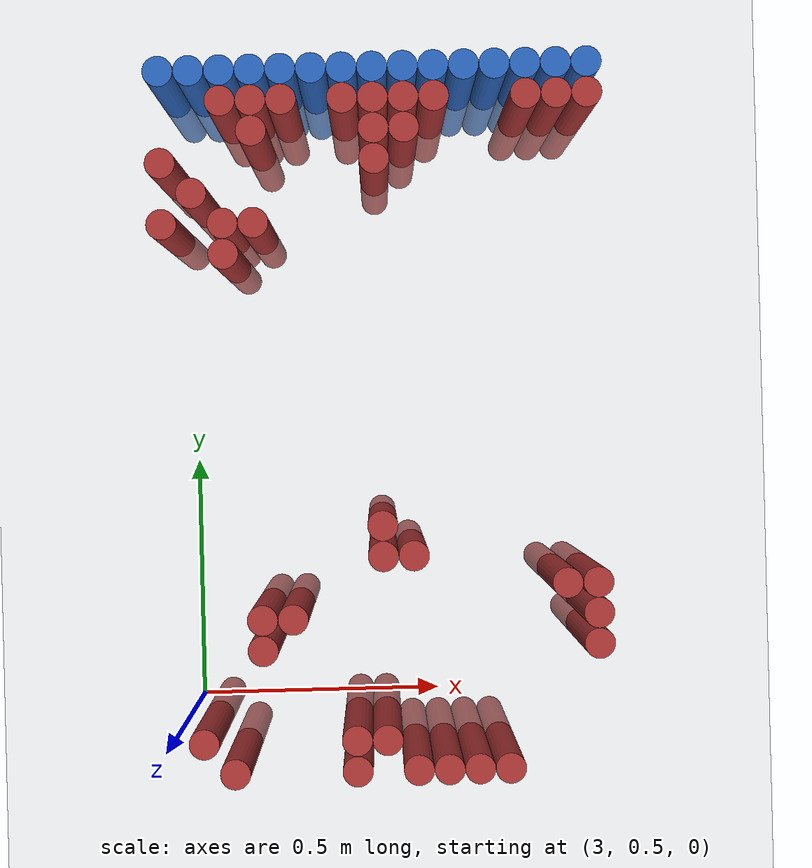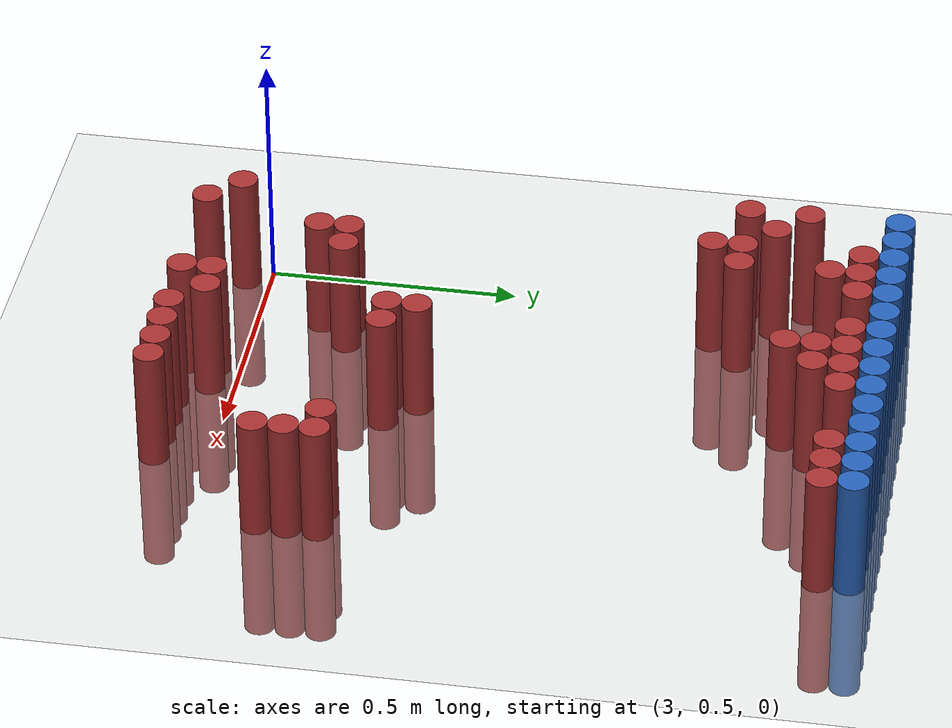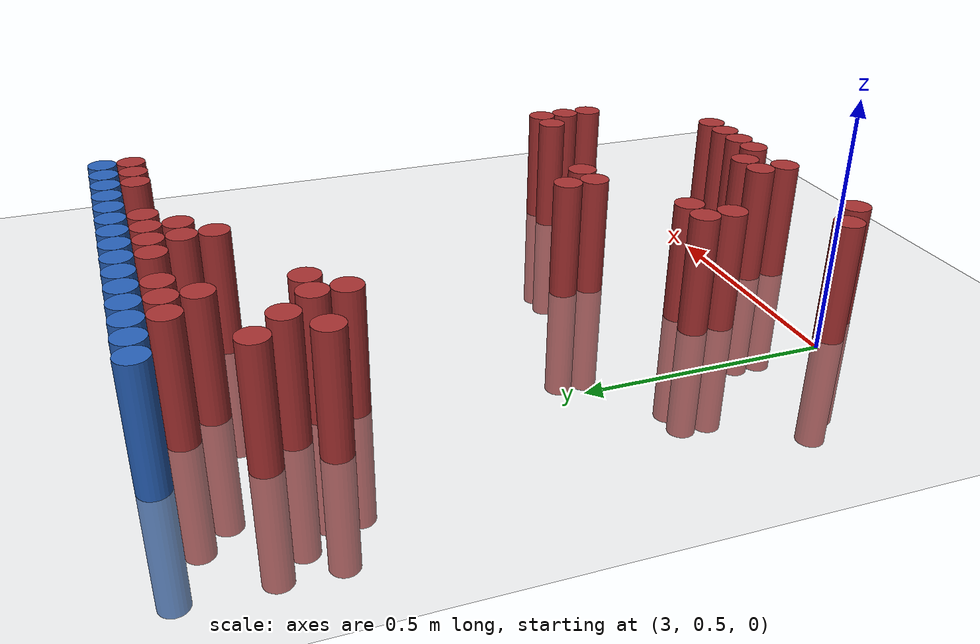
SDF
<sdf version="1.6">
 <world name="default">
  <model name="ground_plane">
   <static>1</static>
   <link name="link">
    <collision name="collision">
     <geometry><plane><normal>0 0 1</normal><size>100 100</size></plane></geometry>
     <surface><friction><ode><mu>100</mu><mu2>50</mu2></ode></friction></surface>
    </collision>
    <visual name="visual">
     <cast_shadows>0</cast_shadows>
     <geometry><plane><normal>0 0 1</normal><size>100 100</size></plane></geometry>
     <material>
      <script><uri>file://media/materials/scripts/gazebo.material</uri><name>Gazebo/Grey</name></script>
     </material>
    </visual>
   </link>
  </model>
  <model name="unit_cylinder_110">
   <static>1</static>
   <pose>2.970000 1.770000 0.000000 0.000000 0.000000 0.000000</pose>
   <link name="link">
    <inertial>
     <mass>1</mass>
     <inertia><ixx>0.145833</ixx><ixy>0</ixy><ixz>0</ixz><iyy>0.145833</iyy><iyz>0</iyz><izz>0.125</izz></inertia>
    </inertial>
    <collision name="collision">
     <geometry><cylinder><radius>0.030000</radius><length>0.5</length></cylinder></geometry>
    </collision>
    <visual name="visual">
     <geometry><cylinder><radius>0.030000</radius><length>0.5</length></cylinder></geometry>
     <material>
      <ambient>0.152000 0.379000 0.720000 1</ambient>
      <diffuse>0.152000 0.379000 0.720000 1</diffuse>
     </material>
     <material>
      <script><name>Gazebo/Grey</name><uri>file://media/materials/scripts/gazebo.material</uri></script>
     </material>
    </visual>
   </link>
  </model>
  <model name="unit_cylinder_111">
   <static>1</static>
   <pose>3.030000 1.770000 0.000000 0.000000 0.000000 0.000000</pose>
   <link name="link">
    <inertial>
     <mass>1</mass>
     <inertia><ixx>0.145833</ixx><ixy>0</ixy><ixz>0</ixz><iyy>0.145833</iyy><iyz>0</iyz><izz>0.125</izz></inertia>
    </inertial>
    <collision name="collision">
     <geometry><cylinder><radius>0.030000</radius><length>0.5</length></cylinder></geometry>
    </collision>
    <visual name="visual">
     <geometry><cylinder><radius>0.030000</radius><length>0.5</length></cylinder></geometry>
     <material>
      <ambient>0.152000 0.379000 0.720000 1</ambient>
      <diffuse>0.152000 0.379000 0.720000 1</diffuse>
     </material>
     <material>
      <script><name>Gazebo/Grey</name><uri>file://media/materials/scripts/gazebo.material</uri></script>
     </material>
    </visual>
   </link>
  </model>
  <model name="unit_cylinder_112">
   <static>1</static>
   <pose>3.090000 1.770000 0.000000 0.000000 0.000000 0.000000</pose>
   <link name="link">
    <inertial>
     <mass>1</mass>
     <inertia><ixx>0.145833</ixx><ixy>0</ixy><ixz>0</ixz><iyy>0.145833</iyy><iyz>0</iyz><izz>0.125</izz></inertia>
    </inertial>
    <collision name="collision">
     <geometry><cylinder><radius>0.030000</radius><length>0.5</length></cylinder></geometry>
    </collision>
    <visual name="visual">
     <geometry><cylinder><radius>0.030000</radius><length>0.5</length></cylinder></geometry>
     <material>
      <ambient>0.152000 0.379000 0.720000 1</ambient>
      <diffuse>0.152000 0.379000 0.720000 1</diffuse>
     </material>
     <material>
      <script><name>Gazebo/Grey</name><uri>file://media/materials/scripts/gazebo.material</uri></script>
     </material>
    </visual>
   </link>
  </model>
  <model name="unit_cylinder_113">
   <static>1</static>
   <pose>3.150000 1.770000 0.000000 0.000000 0.000000 0.000000</pose>
   <link name="link">
    <inertial>
     <mass>1</mass>
     <inertia><ixx>0.145833</ixx><ixy>0</ixy><ixz>0</ixz><iyy>0.145833</iyy><iyz>0</iyz><izz>0.125</izz></inertia>
    </inertial>
    <collision name="collision">
     <geometry><cylinder><radius>0.030000</radius><length>0.5</length></cylinder></geometry>
    </collision>
    <visual name="visual">
     <geometry><cylinder><radius>0.030000</radius><length>0.5</length></cylinder></geometry>
     <material>
      <ambient>0.152000 0.379000 0.720000 1</ambient>
      <diffuse>0.152000 0.379000 0.720000 1</diffuse>
     </material>
     <material>
      <script><name>Gazebo/Grey</name><uri>file://media/materials/scripts/gazebo.material</uri></script>
     </material>
    </visual>
   </link>
  </model>
  <model name="unit_cylinder_114">
   <static>1</static>
   <pose>3.210000 1.770000 0.000000 0.000000 0.000000 0.000000</pose>
   <link name="link">
    <inertial>
     <mass>1</mass>
     <inertia><ixx>0.145833</ixx><ixy>0</ixy><ixz>0</ixz><iyy>0.145833</iyy><iyz>0</iyz><izz>0.125</izz></inertia>
    </inertial>
    <collision name="collision">
     <geometry><cylinder><radius>0.030000</radius><length>0.5</length></cylinder></geometry>
    </collision>
    <visual name="visual">
     <geometry><cylinder><radius>0.030000</radius><length>0.5</length></cylinder></geometry>
     <material>
      <ambient>0.152000 0.379000 0.720000 1</ambient>
      <diffuse>0.152000 0.379000 0.720000 1</diffuse>
     </material>
     <material>
      <script><name>Gazebo/Grey</name><uri>file://media/materials/scripts/gazebo.material</uri></script>
     </material>
    </visual>
   </link>
  </model>
  <model name="unit_cylinder_115">
   <static>1</static>
   <pose>3.270000 1.770000 0.000000 0.000000 0.000000 0.000000</pose>
   <link name="link">
    <inertial>
     <mass>1</mass>
     <inertia><ixx>0.145833</ixx><ixy>0</ixy><ixz>0</ixz><iyy>0.145833</iyy><iyz>0</iyz><izz>0.125</izz></inertia>
    </inertial>
    <collision name="collision">
     <geometry><cylinder><radius>0.030000</radius><length>0.5</length></cylinder></geometry>
    </collision>
    <visual name="visual">
     <geometry><cylinder><radius>0.030000</radius><length>0.5</length></cylinder></geometry>
     <material>
      <ambient>0.152000 0.379000 0.720000 1</ambient>
      <diffuse>0.152000 0.379000 0.720000 1</diffuse>
     </material>
     <material>
      <script><name>Gazebo/Grey</name><uri>file://media/materials/scripts/gazebo.material</uri></script>
     </material>
    </visual>
   </link>
  </model>
  <model name="unit_cylinder_116">
   <static>1</static>
   <pose>3.330000 1.770000 0.000000 0.000000 0.000000 0.000000</pose>
   <link name="link">
    <inertial>
     <mass>1</mass>
     <inertia><ixx>0.145833</ixx><ixy>0</ixy><ixz>0</ixz><iyy>0.145833</iyy><iyz>0</iyz><izz>0.125</izz></inertia>
    </inertial>
    <collision name="collision">
     <geometry><cylinder><radius>0.030000</radius><length>0.5</length></cylinder></geometry>
    </collision>
    <visual name="visual">
     <geometry><cylinder><radius>0.030000</radius><length>0.5</length></cylinder></geometry>
     <material>
      <ambient>0.152000 0.379000 0.720000 1</ambient>
      <diffuse>0.152000 0.379000 0.720000 1</diffuse>
     </material>
     <material>
      <script><name>Gazebo/Grey</name><uri>file://media/materials/scripts/gazebo.material</uri></script>
     </material>
    </visual>
   </link>
  </model>
  <model name="unit_cylinder_117">
   <static>1</static>
   <pose>3.390000 1.770000 0.000000 0.000000 0.000000 0.000000</pose>
   <link name="link">
    <inertial>
     <mass>1</mass>
     <inertia><ixx>0.145833</ixx><ixy>0</ixy><ixz>0</ixz><iyy>0.145833</iyy><iyz>0</iyz><izz>0.125</izz></inertia>
    </inertial>
    <collision name="collision">
     <geometry><cylinder><radius>0.030000</radius><length>0.5</length></cylinder></geometry>
    </collision>
    <visual name="visual">
     <geometry><cylinder><radius>0.030000</radius><length>0.5</length></cylinder></geometry>
     <material>
      <ambient>0.152000 0.379000 0.720000 1</ambient>
      <diffuse>0.152000 0.379000 0.720000 1</diffuse>
     </material>
     <material>
      <script><name>Gazebo/Grey</name><uri>file://media/materials/scripts/gazebo.material</uri></script>
     </material>
    </visual>
   </link>
  </model>
  <model name="unit_cylinder_118">
   <static>1</static>
   <pose>3.450000 1.770000 0.000000 0.000000 0.000000 0.000000</pose>
   <link name="link">
    <inertial>
     <mass>1</mass>
     <inertia><ixx>0.145833</ixx><ixy>0</ixy><ixz>0</ixz><iyy>0.145833</iyy><iyz>0</iyz><izz>0.125</izz></inertia>
    </inertial>
    <collision name="collision">
     <geometry><cylinder><radius>0.030000</radius><length>0.5</length></cylinder></geometry>
    </collision>
    <visual name="visual">
     <geometry><cylinder><radius>0.030000</radius><length>0.5</length></cylinder></geometry>
     <material>
      <ambient>0.152000 0.379000 0.720000 1</ambient>
      <diffuse>0.152000 0.379000 0.720000 1</diffuse>
     </material>
     <material>
      <script><name>Gazebo/Grey</name><uri>file://media/materials/scripts/gazebo.material</uri></script>
     </material>
    </visual>
   </link>
  </model>
  <model name="unit_cylinder_119">
   <static>1</static>
   <pose>3.510000 1.770000 0.000000 0.000000 0.000000 0.000000</pose>
   <link name="link">
    <inertial>
     <mass>1</mass>
     <inertia><ixx>0.145833</ixx><ixy>0</ixy><ixz>0</ixz><iyy>0.145833</iyy><iyz>0</iyz><izz>0.125</izz></inertia>
    </inertial>
    <collision name="collision">
     <geometry><cylinder><radius>0.030000</radius><length>0.5</length></cylinder></geometry>
    </collision>
    <visual name="visual">
     <geometry><cylinder><radius>0.030000</radius><length>0.5</length></cylinder></geometry>
     <material>
      <ambient>0.152000 0.379000 0.720000 1</ambient>
      <diffuse>0.152000 0.379000 0.720000 1</diffuse>
     </material>
     <material>
      <script><name>Gazebo/Grey</name><uri>file://media/materials/scripts/gazebo.material</uri></script>
     </material>
    </visual>
   </link>
  </model>
  <model name="unit_cylinder_120">
   <static>1</static>
   <pose>3.570000 1.770000 0.000000 0.000000 0.000000 0.000000</pose>
   <link name="link">
    <inertial>
     <mass>1</mass>
     <inertia><ixx>0.145833</ixx><ixy>0</ixy><ixz>0</ixz><iyy>0.145833</iyy><iyz>0</iyz><izz>0.125</izz></inertia>
    </inertial>
    <collision name="collision">
     <geometry><cylinder><radius>0.030000</radius><length>0.5</length></cylinder></geometry>
    </collision>
    <visual name="visual">
     <geometry><cylinder><radius>0.030000</radius><length>0.5</length></cylinder></geometry>
     <material>
      <ambient>0.152000 0.379000 0.720000 1</ambient>
      <diffuse>0.152000 0.379000 0.720000 1</diffuse>
     </material>
     <material>
      <script><name>Gazebo/Grey</name><uri>file://media/materials/scripts/gazebo.material</uri></script>
     </material>
    </visual>
   </link>
  </model>
  <model name="unit_cylinder_121">
   <static>1</static>
   <pose>3.630000 1.770000 0.000000 0.000000 0.000000 0.000000</pose>
   <link name="link">
    <inertial>
     <mass>1</mass>
     <inertia><ixx>0.145833</ixx><ixy>0</ixy><ixz>0</ixz><iyy>0.145833</iyy><iyz>0</iyz><izz>0.125</izz></inertia>
    </inertial>
    <collision name="collision">
     <geometry><cylinder><radius>0.030000</radius><length>0.5</length></cylinder></geometry>
    </collision>
    <visual name="visual">
     <geometry><cylinder><radius>0.030000</radius><length>0.5</length></cylinder></geometry>
     <material>
      <ambient>0.152000 0.379000 0.720000 1</ambient>
      <diffuse>0.152000 0.379000 0.720000 1</diffuse>
     </material>
     <material>
      <script><name>Gazebo/Grey</name><uri>file://media/materials/scripts/gazebo.material</uri></script>
     </material>
    </visual>
   </link>
  </model>
  <model name="unit_cylinder_122">
   <static>1</static>
   <pose>3.690000 1.770000 0.000000 0.000000 0.000000 0.000000</pose>
   <link name="link">
    <inertial>
     <mass>1</mass>
     <inertia><ixx>0.145833</ixx><ixy>0</ixy><ixz>0</ixz><iyy>0.145833</iyy><iyz>0</iyz><izz>0.125</izz></inertia>
    </inertial>
    <collision name="collision">
     <geometry><cylinder><radius>0.030000</radius><length>0.5</length></cylinder></geometry>
    </collision>
    <visual name="visual">
     <geometry><cylinder><radius>0.030000</radius><length>0.5</length></cylinder></geometry>
     <material>
      <ambient>0.152000 0.379000 0.720000 1</ambient>
      <diffuse>0.152000 0.379000 0.720000 1</diffuse>
     </material>
     <material>
      <script><name>Gazebo/Grey</name><uri>file://media/materials/scripts/gazebo.material</uri></script>
     </material>
    </visual>
   </link>
  </model>
  <model name="unit_cylinder_123">
   <static>1</static>
   <pose>3.750000 1.770000 0.000000 0.000000 0.000000 0.000000</pose>
   <link name="link">
    <inertial>
     <mass>1</mass>
     <inertia><ixx>0.145833</ixx><ixy>0</ixy><ixz>0</ixz><iyy>0.145833</iyy><iyz>0</iyz><izz>0.125</izz></inertia>
    </inertial>
    <collision name="collision">
     <geometry><cylinder><radius>0.030000</radius><length>0.5</length></cylinder></geometry>
    </collision>
    <visual name="visual">
     <geometry><cylinder><radius>0.030000</radius><length>0.5</length></cylinder></geometry>
     <material>
      <ambient>0.152000 0.379000 0.720000 1</ambient>
      <diffuse>0.152000 0.379000 0.720000 1</diffuse>
     </material>
     <material>
      <script><name>Gazebo/Grey</name><uri>file://media/materials/scripts/gazebo.material</uri></script>
     </material>
    </visual>
   </link>
  </model>
  <model name="unit_cylinder_124">
   <static>1</static>
   <pose>3.810000 1.770000 0.000000 0.000000 0.000000 0.000000</pose>
   <link name="link">
    <inertial>
     <mass>1</mass>
     <inertia><ixx>0.145833</ixx><ixy>0</ixy><ixz>0</ixz><iyy>0.145833</iyy><iyz>0</iyz><izz>0.125</izz></inertia>
    </inertial>
    <collision name="collision">
     <geometry><cylinder><radius>0.030000</radius><length>0.5</length></cylinder></geometry>
    </collision>
    <visual name="visual">
     <geometry><cylinder><radius>0.030000</radius><length>0.5</length></cylinder></geometry>
     <material>
      <ambient>0.152000 0.379000 0.720000 1</ambient>
      <diffuse>0.152000 0.379000 0.720000 1</diffuse>
     </material>
     <material>
      <script><name>Gazebo/Grey</name><uri>file://media/materials/scripts/gazebo.material</uri></script>
     </material>
    </visual>
   </link>
  </model>
  <model name="unit_cylinder_135">
   <static>1</static>
   <pose>3.090000 1.710000 0.000000 0.000000 0.000000 0.000000</pose>
   <link name="link">
    <inertial>
     <mass>1</mass>
     <inertia><ixx>0.145833</ixx><ixy>0</ixy><ixz>0</ixz><iyy>0.145833</iyy><iyz>0</iyz><izz>0.125</izz></inertia>
    </inertial>
    <collision name="collision">
     <geometry><cylinder><radius>0.030000</radius><length>0.5</length></cylinder></geometry>
    </collision>
    <visual name="visual">
     <geometry><cylinder><radius>0.030000</radius><length>0.5</length></cylinder></geometry>
     <material>
      <ambient>0.648000 0.192000 0.192000 1</ambient>
      <diffuse>0.648000 0.192000 0.192000 1</diffuse>
     </material>
     <material>
      <script><name>Gazebo/Grey</name><uri>file://media/materials/scripts/gazebo.material</uri></script>
     </material>
    </visual>
   </link>
  </model>
  <model name="unit_cylinder_136">
   <static>1</static>
   <pose>3.150000 1.710000 0.000000 0.000000 0.000000 0.000000</pose>
   <link name="link">
    <inertial>
     <mass>1</mass>
     <inertia><ixx>0.145833</ixx><ixy>0</ixy><ixz>0</ixz><iyy>0.145833</iyy><iyz>0</iyz><izz>0.125</izz></inertia>
    </inertial>
    <collision name="collision">
     <geometry><cylinder><radius>0.030000</radius><length>0.5</length></cylinder></geometry>
    </collision>
    <visual name="visual">
     <geometry><cylinder><radius>0.030000</radius><length>0.5</length></cylinder></geometry>
     <material>
      <ambient>0.648000 0.192000 0.192000 1</ambient>
      <diffuse>0.648000 0.192000 0.192000 1</diffuse>
     </material>
     <material>
      <script><name>Gazebo/Grey</name><uri>file://media/materials/scripts/gazebo.material</uri></script>
     </material>
    </visual>
   </link>
  </model>
  <model name="unit_cylinder_137">
   <static>1</static>
   <pose>3.210000 1.710000 0.000000 0.000000 0.000000 0.000000</pose>
   <link name="link">
    <inertial>
     <mass>1</mass>
     <inertia><ixx>0.145833</ixx><ixy>0</ixy><ixz>0</ixz><iyy>0.145833</iyy><iyz>0</iyz><izz>0.125</izz></inertia>
    </inertial>
    <collision name="collision">
     <geometry><cylinder><radius>0.030000</radius><length>0.5</length></cylinder></geometry>
    </collision>
    <visual name="visual">
     <geometry><cylinder><radius>0.030000</radius><length>0.5</length></cylinder></geometry>
     <material>
      <ambient>0.648000 0.192000 0.192000 1</ambient>
      <diffuse>0.648000 0.192000 0.192000 1</diffuse>
     </material>
     <material>
      <script><name>Gazebo/Grey</name><uri>file://media/materials/scripts/gazebo.material</uri></script>
     </material>
    </visual>
   </link>
  </model>
  <model name="unit_cylinder_138">
   <static>1</static>
   <pose>3.330000 1.710000 0.000000 0.000000 0.000000 0.000000</pose>
   <link name="link">
    <inertial>
     <mass>1</mass>
     <inertia><ixx>0.145833</ixx><ixy>0</ixy><ixz>0</ixz><iyy>0.145833</iyy><iyz>0</iyz><izz>0.125</izz></inertia>
    </inertial>
    <collision name="collision">
     <geometry><cylinder><radius>0.030000</radius><length>0.5</length></cylinder></geometry>
    </collision>
    <visual name="visual">
     <geometry><cylinder><radius>0.030000</radius><length>0.5</length></cylinder></geometry>
     <material>
      <ambient>0.648000 0.192000 0.192000 1</ambient>
      <diffuse>0.648000 0.192000 0.192000 1</diffuse>
     </material>
     <material>
      <script><name>Gazebo/Grey</name><uri>file://media/materials/scripts/gazebo.material</uri></script>
     </material>
    </visual>
   </link>
  </model>
  <model name="unit_cylinder_139">
   <static>1</static>
   <pose>3.390000 1.710000 0.000000 0.000000 0.000000 0.000000</pose>
   <link name="link">
    <inertial>
     <mass>1</mass>
     <inertia><ixx>0.145833</ixx><ixy>0</ixy><ixz>0</ixz><iyy>0.145833</iyy><iyz>0</iyz><izz>0.125</izz></inertia>
    </inertial>
    <collision name="collision">
     <geometry><cylinder><radius>0.030000</radius><length>0.5</length></cylinder></geometry>
    </collision>
    <visual name="visual">
     <geometry><cylinder><radius>0.030000</radius><length>0.5</length></cylinder></geometry>
     <material>
      <ambient>0.648000 0.192000 0.192000 1</ambient>
      <diffuse>0.648000 0.192000 0.192000 1</diffuse>
     </material>
     <material>
      <script><name>Gazebo/Grey</name><uri>file://media/materials/scripts/gazebo.material</uri></script>
     </material>
    </visual>
   </link>
  </model>
  <model name="unit_cylinder_140">
   <static>1</static>
   <pose>3.450000 1.710000 0.000000 0.000000 0.000000 0.000000</pose>
   <link name="link">
    <inertial>
     <mass>1</mass>
     <inertia><ixx>0.145833</ixx><ixy>0</ixy><ixz>0</ixz><iyy>0.145833</iyy><iyz>0</iyz><izz>0.125</izz></inertia>
    </inertial>
    <collision name="collision">
     <geometry><cylinder><radius>0.030000</radius><length>0.5</length></cylinder></geometry>
    </collision>
    <visual name="visual">
     <geometry><cylinder><radius>0.030000</radius><length>0.5</length></cylinder></geometry>
     <material>
      <ambient>0.648000 0.192000 0.192000 1</ambient>
      <diffuse>0.648000 0.192000 0.192000 1</diffuse>
     </material>
     <material>
      <script><name>Gazebo/Grey</name><uri>file://media/materials/scripts/gazebo.material</uri></script>
     </material>
    </visual>
   </link>
  </model>
  <model name="unit_cylinder_141">
   <static>1</static>
   <pose>3.510000 1.710000 0.000000 0.000000 0.000000 0.000000</pose>
   <link name="link">
    <inertial>
     <mass>1</mass>
     <inertia><ixx>0.145833</ixx><ixy>0</ixy><ixz>0</ixz><iyy>0.145833</iyy><iyz>0</iyz><izz>0.125</izz></inertia>
    </inertial>
    <collision name="collision">
     <geometry><cylinder><radius>0.030000</radius><length>0.5</length></cylinder></geometry>
    </collision>
    <visual name="visual">
     <geometry><cylinder><radius>0.030000</radius><length>0.5</length></cylinder></geometry>
     <material>
      <ambient>0.648000 0.192000 0.192000 1</ambient>
      <diffuse>0.648000 0.192000 0.192000 1</diffuse>
     </material>
     <material>
      <script><name>Gazebo/Grey</name><uri>file://media/materials/scripts/gazebo.material</uri></script>
     </material>
    </visual>
   </link>
  </model>
  <model name="unit_cylinder_142">
   <static>1</static>
   <pose>3.690000 1.710000 0.000000 0.000000 0.000000 0.000000</pose>
   <link name="link">
    <inertial>
     <mass>1</mass>
     <inertia><ixx>0.145833</ixx><ixy>0</ixy><ixz>0</ixz><iyy>0.145833</iyy><iyz>0</iyz><izz>0.125</izz></inertia>
    </inertial>
    <collision name="collision">
     <geometry><cylinder><radius>0.030000</radius><length>0.5</length></cylinder></geometry>
    </collision>
    <visual name="visual">
     <geometry><cylinder><radius>0.030000</radius><length>0.5</length></cylinder></geometry>
     <material>
      <ambient>0.648000 0.192000 0.192000 1</ambient>
      <diffuse>0.648000 0.192000 0.192000 1</diffuse>
     </material>
     <material>
      <script><name>Gazebo/Grey</name><uri>file://media/materials/scripts/gazebo.material</uri></script>
     </material>
    </visual>
   </link>
  </model>
  <model name="unit_cylinder_143">
   <static>1</static>
   <pose>3.750000 1.710000 0.000000 0.000000 0.000000 0.000000</pose>
   <link name="link">
    <inertial>
     <mass>1</mass>
     <inertia><ixx>0.145833</ixx><ixy>0</ixy><ixz>0</ixz><iyy>0.145833</iyy><iyz>0</iyz><izz>0.125</izz></inertia>
    </inertial>
    <collision name="collision">
     <geometry><cylinder><radius>0.030000</radius><length>0.5</length></cylinder></geometry>
    </collision>
    <visual name="visual">
     <geometry><cylinder><radius>0.030000</radius><length>0.5</length></cylinder></geometry>
     <material>
      <ambient>0.648000 0.192000 0.192000 1</ambient>
      <diffuse>0.648000 0.192000 0.192000 1</diffuse>
     </material>
     <material>
      <script><name>Gazebo/Grey</name><uri>file://media/materials/scripts/gazebo.material</uri></script>
     </material>
    </visual>
   </link>
  </model>
  <model name="unit_cylinder_144">
   <static>1</static>
   <pose>3.810000 1.710000 0.000000 0.000000 0.000000 0.000000</pose>
   <link name="link">
    <inertial>
     <mass>1</mass>
     <inertia><ixx>0.145833</ixx><ixy>0</ixy><ixz>0</ixz><iyy>0.145833</iyy><iyz>0</iyz><izz>0.125</izz></inertia>
    </inertial>
    <collision name="collision">
     <geometry><cylinder><radius>0.030000</radius><length>0.5</length></cylinder></geometry>
    </collision>
    <visual name="visual">
     <geometry><cylinder><radius>0.030000</radius><length>0.5</length></cylinder></geometry>
     <material>
      <ambient>0.648000 0.192000 0.192000 1</ambient>
      <diffuse>0.648000 0.192000 0.192000 1</diffuse>
     </material>
     <material>
      <script><name>Gazebo/Grey</name><uri>file://media/materials/scripts/gazebo.material</uri></script>
     </material>
    </visual>
   </link>
  </model>
  <model name="unit_cylinder_146">
   <static>1</static>
   <pose>3.150000 1.650000 0.000000 0.000000 0.000000 0.000000</pose>
   <link name="link">
    <inertial>
     <mass>1</mass>
     <inertia><ixx>0.145833</ixx><ixy>0</ixy><ixz>0</ixz><iyy>0.145833</iyy><iyz>0</iyz><izz>0.125</izz></inertia>
    </inertial>
    <collision name="collision">
     <geometry><cylinder><radius>0.030000</radius><length>0.5</length></cylinder></geometry>
    </collision>
    <visual name="visual">
     <geometry><cylinder><radius>0.030000</radius><length>0.5</length></cylinder></geometry>
     <material>
      <ambient>0.648000 0.192000 0.192000 1</ambient>
      <diffuse>0.648000 0.192000 0.192000 1</diffuse>
     </material>
     <material>
      <script><name>Gazebo/Grey</name><uri>file://media/materials/scripts/gazebo.material</uri></script>
     </material>
    </visual>
   </link>
  </model>
  <model name="unit_cylinder_147">
   <static>1</static>
   <pose>3.390000 1.650000 0.000000 0.000000 0.000000 0.000000</pose>
   <link name="link">
    <inertial>
     <mass>1</mass>
     <inertia><ixx>0.145833</ixx><ixy>0</ixy><ixz>0</ixz><iyy>0.145833</iyy><iyz>0</iyz><izz>0.125</izz></inertia>
    </inertial>
    <collision name="collision">
     <geometry><cylinder><radius>0.030000</radius><length>0.5</length></cylinder></geometry>
    </collision>
    <visual name="visual">
     <geometry><cylinder><radius>0.030000</radius><length>0.5</length></cylinder></geometry>
     <material>
      <ambient>0.648000 0.192000 0.192000 1</ambient>
      <diffuse>0.648000 0.192000 0.192000 1</diffuse>
     </material>
     <material>
      <script><name>Gazebo/Grey</name><uri>file://media/materials/scripts/gazebo.material</uri></script>
     </material>
    </visual>
   </link>
  </model>
  <model name="unit_cylinder_148">
   <static>1</static>
   <pose>3.450000 1.650000 0.000000 0.000000 0.000000 0.000000</pose>
   <link name="link">
    <inertial>
     <mass>1</mass>
     <inertia><ixx>0.145833</ixx><ixy>0</ixy><ixz>0</ixz><iyy>0.145833</iyy><iyz>0</iyz><izz>0.125</izz></inertia>
    </inertial>
    <collision name="collision">
     <geometry><cylinder><radius>0.030000</radius><length>0.5</length></cylinder></geometry>
    </collision>
    <visual name="visual">
     <geometry><cylinder><radius>0.030000</radius><length>0.5</length></cylinder></geometry>
     <material>
      <ambient>0.648000 0.192000 0.192000 1</ambient>
      <diffuse>0.648000 0.192000 0.192000 1</diffuse>
     </material>
     <material>
      <script><name>Gazebo/Grey</name><uri>file://media/materials/scripts/gazebo.material</uri></script>
     </material>
    </visual>
   </link>
  </model>
  <model name="unit_cylinder_149">
   <static>1</static>
   <pose>2.970000 1.590000 0.000000 0.000000 0.000000 0.000000</pose>
   <link name="link">
    <inertial>
     <mass>1</mass>
     <inertia><ixx>0.145833</ixx><ixy>0</ixy><ixz>0</ixz><iyy>0.145833</iyy><iyz>0</iyz><izz>0.125</izz></inertia>
    </inertial>
    <collision name="collision">
     <geometry><cylinder><radius>0.030000</radius><length>0.5</length></cylinder></geometry>
    </collision>
    <visual name="visual">
     <geometry><cylinder><radius>0.030000</radius><length>0.5</length></cylinder></geometry>
     <material>
      <ambient>0.648000 0.192000 0.192000 1</ambient>
      <diffuse>0.648000 0.192000 0.192000 1</diffuse>
     </material>
     <material>
      <script><name>Gazebo/Grey</name><uri>file://media/materials/scripts/gazebo.material</uri></script>
     </material>
    </visual>
   </link>
  </model>
  <model name="unit_cylinder_150">
   <static>1</static>
   <pose>3.390000 1.590000 0.000000 0.000000 0.000000 0.000000</pose>
   <link name="link">
    <inertial>
     <mass>1</mass>
     <inertia><ixx>0.145833</ixx><ixy>0</ixy><ixz>0</ixz><iyy>0.145833</iyy><iyz>0</iyz><izz>0.125</izz></inertia>
    </inertial>
    <collision name="collision">
     <geometry><cylinder><radius>0.030000</radius><length>0.5</length></cylinder></geometry>
    </collision>
    <visual name="visual">
     <geometry><cylinder><radius>0.030000</radius><length>0.5</length></cylinder></geometry>
     <material>
      <ambient>0.648000 0.192000 0.192000 1</ambient>
      <diffuse>0.648000 0.192000 0.192000 1</diffuse>
     </material>
     <material>
      <script><name>Gazebo/Grey</name><uri>file://media/materials/scripts/gazebo.material</uri></script>
     </material>
    </visual>
   </link>
  </model>
  <model name="unit_cylinder_153">
   <static>1</static>
   <pose>3.030000 1.530000 0.000000 0.000000 0.000000 0.000000</pose>
   <link name="link">
    <inertial>
     <mass>1</mass>
     <inertia><ixx>0.145833</ixx><ixy>0</ixy><ixz>0</ixz><iyy>0.145833</iyy><iyz>0</iyz><izz>0.125</izz></inertia>
    </inertial>
    <collision name="collision">
     <geometry><cylinder><radius>0.030000</radius><length>0.5</length></cylinder></geometry>
    </collision>
    <visual name="visual">
     <geometry><cylinder><radius>0.030000</radius><length>0.5</length></cylinder></geometry>
     <material>
      <ambient>0.648000 0.192000 0.192000 1</ambient>
      <diffuse>0.648000 0.192000 0.192000 1</diffuse>
     </material>
     <material>
      <script><name>Gazebo/Grey</name><uri>file://media/materials/scripts/gazebo.material</uri></script>
     </material>
    </visual>
   </link>
  </model>
  <model name="unit_cylinder_156">
   <static>1</static>
   <pose>2.970000 1.470000 0.000000 0.000000 0.000000 0.000000</pose>
   <link name="link">
    <inertial>
     <mass>1</mass>
     <inertia><ixx>0.145833</ixx><ixy>0</ixy><ixz>0</ixz><iyy>0.145833</iyy><iyz>0</iyz><izz>0.125</izz></inertia>
    </inertial>
    <collision name="collision">
     <geometry><cylinder><radius>0.030000</radius><length>0.5</length></cylinder></geometry>
    </collision>
    <visual name="visual">
     <geometry><cylinder><radius>0.030000</radius><length>0.5</length></cylinder></geometry>
     <material>
      <ambient>0.648000 0.192000 0.192000 1</ambient>
      <diffuse>0.648000 0.192000 0.192000 1</diffuse>
     </material>
     <material>
      <script><name>Gazebo/Grey</name><uri>file://media/materials/scripts/gazebo.material</uri></script>
     </material>
    </visual>
   </link>
  </model>
  <model name="unit_cylinder_157">
   <static>1</static>
   <pose>3.090000 1.470000 0.000000 0.000000 0.000000 0.000000</pose>
   <link name="link">
    <inertial>
     <mass>1</mass>
     <inertia><ixx>0.145833</ixx><ixy>0</ixy><ixz>0</ixz><iyy>0.145833</iyy><iyz>0</iyz><izz>0.125</izz></inertia>
    </inertial>
    <collision name="collision">
     <geometry><cylinder><radius>0.030000</radius><length>0.5</length></cylinder></geometry>
    </collision>
    <visual name="visual">
     <geometry><cylinder><radius>0.030000</radius><length>0.5</length></cylinder></geometry>
     <material>
      <ambient>0.648000 0.192000 0.192000 1</ambient>
      <diffuse>0.648000 0.192000 0.192000 1</diffuse>
     </material>
     <material>
      <script><name>Gazebo/Grey</name><uri>file://media/materials/scripts/gazebo.material</uri></script>
     </material>
    </visual>
   </link>
  </model>
  <model name="unit_cylinder_158">
   <static>1</static>
   <pose>3.150000 1.470000 0.000000 0.000000 0.000000 0.000000</pose>
   <link name="link">
    <inertial>
     <mass>1</mass>
     <inertia><ixx>0.145833</ixx><ixy>0</ixy><ixz>0</ixz><iyy>0.145833</iyy><iyz>0</iyz><izz>0.125</izz></inertia>
    </inertial>
    <collision name="collision">
     <geometry><cylinder><radius>0.030000</radius><length>0.5</length></cylinder></geometry>
    </collision>
    <visual name="visual">
     <geometry><cylinder><radius>0.030000</radius><length>0.5</length></cylinder></geometry>
     <material>
      <ambient>0.648000 0.192000 0.192000 1</ambient>
      <diffuse>0.648000 0.192000 0.192000 1</diffuse>
     </material>
     <material>
      <script><name>Gazebo/Grey</name><uri>file://media/materials/scripts/gazebo.material</uri></script>
     </material>
    </visual>
   </link>
  </model>
  <model name="unit_cylinder_159">
   <static>1</static>
   <pose>3.090000 1.410000 0.000000 0.000000 0.000000 0.000000</pose>
   <link name="link">
    <inertial>
     <mass>1</mass>
     <inertia><ixx>0.145833</ixx><ixy>0</ixy><ixz>0</ixz><iyy>0.145833</iyy><iyz>0</iyz><izz>0.125</izz></inertia>
    </inertial>
    <collision name="collision">
     <geometry><cylinder><radius>0.030000</radius><length>0.5</length></cylinder></geometry>
    </collision>
    <visual name="visual">
     <geometry><cylinder><radius>0.030000</radius><length>0.5</length></cylinder></geometry>
     <material>
      <ambient>0.648000 0.192000 0.192000 1</ambient>
      <diffuse>0.648000 0.192000 0.192000 1</diffuse>
     </material>
     <material>
      <script><name>Gazebo/Grey</name><uri>file://media/materials/scripts/gazebo.material</uri></script>
     </material>
    </visual>
   </link>
  </model>
  <model name="unit_cylinder_182">
   <static>1</static>
   <pose>3.390000 0.870000 0.000000 0.000000 0.000000 0.000000</pose>
   <link name="link">
    <inertial>
     <mass>1</mass>
     <inertia><ixx>0.145833</ixx><ixy>0</ixy><ixz>0</ixz><iyy>0.145833</iyy><iyz>0</iyz><izz>0.125</izz></inertia>
    </inertial>
    <collision name="collision">
     <geometry><cylinder><radius>0.030000</radius><length>0.5</length></cylinder></geometry>
    </collision>
    <visual name="visual">
     <geometry><cylinder><radius>0.030000</radius><length>0.5</length></cylinder></geometry>
     <material>
      <ambient>0.648000 0.192000 0.192000 1</ambient>
      <diffuse>0.648000 0.192000 0.192000 1</diffuse>
     </material>
     <material>
      <script><name>Gazebo/Grey</name><uri>file://media/materials/scripts/gazebo.material</uri></script>
     </material>
    </visual>
   </link>
  </model>
  <model name="unit_cylinder_183">
   <static>1</static>
   <pose>3.390000 0.810000 0.000000 0.000000 0.000000 0.000000</pose>
   <link name="link">
    <inertial>
     <mass>1</mass>
     <inertia><ixx>0.145833</ixx><ixy>0</ixy><ixz>0</ixz><iyy>0.145833</iyy><iyz>0</iyz><izz>0.125</izz></inertia>
    </inertial>
    <collision name="collision">
     <geometry><cylinder><radius>0.030000</radius><length>0.5</length></cylinder></geometry>
    </collision>
    <visual name="visual">
     <geometry><cylinder><radius>0.030000</radius><length>0.5</length></cylinder></geometry>
     <material>
      <ambient>0.648000 0.192000 0.192000 1</ambient>
      <diffuse>0.648000 0.192000 0.192000 1</diffuse>
     </material>
     <material>
      <script><name>Gazebo/Grey</name><uri>file://media/materials/scripts/gazebo.material</uri></script>
     </material>
    </visual>
   </link>
  </model>
  <model name="unit_cylinder_184">
   <static>1</static>
   <pose>3.450000 0.810000 0.000000 0.000000 0.000000 0.000000</pose>
   <link name="link">
    <inertial>
     <mass>1</mass>
     <inertia><ixx>0.145833</ixx><ixy>0</ixy><ixz>0</ixz><iyy>0.145833</iyy><iyz>0</iyz><izz>0.125</izz></inertia>
    </inertial>
    <collision name="collision">
     <geometry><cylinder><radius>0.030000</radius><length>0.5</length></cylinder></geometry>
    </collision>
    <visual name="visual">
     <geometry><cylinder><radius>0.030000</radius><length>0.5</length></cylinder></geometry>
     <material>
      <ambient>0.648000 0.192000 0.192000 1</ambient>
      <diffuse>0.648000 0.192000 0.192000 1</diffuse>
     </material>
     <material>
      <script><name>Gazebo/Grey</name><uri>file://media/materials/scripts/gazebo.material</uri></script>
     </material>
    </visual>
   </link>
  </model>
  <model name="unit_cylinder_185">
   <static>1</static>
   <pose>3.750000 0.750000 0.000000 0.000000 0.000000 0.000000</pose>
   <link name="link">
    <inertial>
     <mass>1</mass>
     <inertia><ixx>0.145833</ixx><ixy>0</ixy><ixz>0</ixz><iyy>0.145833</iyy><iyz>0</iyz><izz>0.125</izz></inertia>
    </inertial>
    <collision name="collision">
     <geometry><cylinder><radius>0.030000</radius><length>0.5</length></cylinder></geometry>
    </collision>
    <visual name="visual">
     <geometry><cylinder><radius>0.030000</radius><length>0.5</length></cylinder></geometry>
     <material>
      <ambient>0.648000 0.192000 0.192000 1</ambient>
      <diffuse>0.648000 0.192000 0.192000 1</diffuse>
     </material>
     <material>
      <script><name>Gazebo/Grey</name><uri>file://media/materials/scripts/gazebo.material</uri></script>
     </material>
    </visual>
   </link>
  </model>
  <model name="unit_cylinder_186">
   <static>1</static>
   <pose>3.810000 0.750000 0.000000 0.000000 0.000000 0.000000</pose>
   <link name="link">
    <inertial>
     <mass>1</mass>
     <inertia><ixx>0.145833</ixx><ixy>0</ixy><ixz>0</ixz><iyy>0.145833</iyy><iyz>0</iyz><izz>0.125</izz></inertia>
    </inertial>
    <collision name="collision">
     <geometry><cylinder><radius>0.030000</radius><length>0.5</length></cylinder></geometry>
    </collision>
    <visual name="visual">
     <geometry><cylinder><radius>0.030000</radius><length>0.5</length></cylinder></geometry>
     <material>
      <ambient>0.648000 0.192000 0.192000 1</ambient>
      <diffuse>0.648000 0.192000 0.192000 1</diffuse>
     </material>
     <material>
      <script><name>Gazebo/Grey</name><uri>file://media/materials/scripts/gazebo.material</uri></script>
     </material>
    </visual>
   </link>
  </model>
  <model name="unit_cylinder_189">
   <static>1</static>
   <pose>3.150000 0.690000 0.000000 0.000000 0.000000 0.000000</pose>
   <link name="link">
    <inertial>
     <mass>1</mass>
     <inertia><ixx>0.145833</ixx><ixy>0</ixy><ixz>0</ixz><iyy>0.145833</iyy><iyz>0</iyz><izz>0.125</izz></inertia>
    </inertial>
    <collision name="collision">
     <geometry><cylinder><radius>0.030000</radius><length>0.5</length></cylinder></geometry>
    </collision>
    <visual name="visual">
     <geometry><cylinder><radius>0.030000</radius><length>0.5</length></cylinder></geometry>
     <material>
      <ambient>0.648000 0.192000 0.192000 1</ambient>
      <diffuse>0.648000 0.192000 0.192000 1</diffuse>
     </material>
     <material>
      <script><name>Gazebo/Grey</name><uri>file://media/materials/scripts/gazebo.material</uri></script>
     </material>
    </visual>
   </link>
  </model>
  <model name="unit_cylinder_190">
   <static>1</static>
   <pose>3.210000 0.690000 0.000000 0.000000 0.000000 0.000000</pose>
   <link name="link">
    <inertial>
     <mass>1</mass>
     <inertia><ixx>0.145833</ixx><ixy>0</ixy><ixz>0</ixz><iyy>0.145833</iyy><iyz>0</iyz><izz>0.125</izz></inertia>
    </inertial>
    <collision name="collision">
     <geometry><cylinder><radius>0.030000</radius><length>0.5</length></cylinder></geometry>
    </collision>
    <visual name="visual">
     <geometry><cylinder><radius>0.030000</radius><length>0.5</length></cylinder></geometry>
     <material>
      <ambient>0.648000 0.192000 0.192000 1</ambient>
      <diffuse>0.648000 0.192000 0.192000 1</diffuse>
     </material>
     <material>
      <script><name>Gazebo/Grey</name><uri>file://media/materials/scripts/gazebo.material</uri></script>
     </material>
    </visual>
   </link>
  </model>
  <model name="unit_cylinder_191">
   <static>1</static>
   <pose>3.810000 0.690000 0.000000 0.000000 0.000000 0.000000</pose>
   <link name="link">
    <inertial>
     <mass>1</mass>
     <inertia><ixx>0.145833</ixx><ixy>0</ixy><ixz>0</ixz><iyy>0.145833</iyy><iyz>0</iyz><izz>0.125</izz></inertia>
    </inertial>
    <collision name="collision">
     <geometry><cylinder><radius>0.030000</radius><length>0.5</length></cylinder></geometry>
    </collision>
    <visual name="visual">
     <geometry><cylinder><radius>0.030000</radius><length>0.5</length></cylinder></geometry>
     <material>
      <ambient>0.648000 0.192000 0.192000 1</ambient>
      <diffuse>0.648000 0.192000 0.192000 1</diffuse>
     </material>
     <material>
      <script><name>Gazebo/Grey</name><uri>file://media/materials/scripts/gazebo.material</uri></script>
     </material>
    </visual>
   </link>
  </model>
  <model name="unit_cylinder_196">
   <static>1</static>
   <pose>3.150000 0.630000 0.000000 0.000000 0.000000 0.000000</pose>
   <link name="link">
    <inertial>
     <mass>1</mass>
     <inertia><ixx>0.145833</ixx><ixy>0</ixy><ixz>0</ixz><iyy>0.145833</iyy><iyz>0</iyz><izz>0.125</izz></inertia>
    </inertial>
    <collision name="collision">
     <geometry><cylinder><radius>0.030000</radius><length>0.5</length></cylinder></geometry>
    </collision>
    <visual name="visual">
     <geometry><cylinder><radius>0.030000</radius><length>0.5</length></cylinder></geometry>
     <material>
      <ambient>0.648000 0.192000 0.192000 1</ambient>
      <diffuse>0.648000 0.192000 0.192000 1</diffuse>
     </material>
     <material>
      <script><name>Gazebo/Grey</name><uri>file://media/materials/scripts/gazebo.material</uri></script>
     </material>
    </visual>
   </link>
  </model>
  <model name="unit_cylinder_197">
   <static>1</static>
   <pose>3.810000 0.630000 0.000000 0.000000 0.000000 0.000000</pose>
   <link name="link">
    <inertial>
     <mass>1</mass>
     <inertia><ixx>0.145833</ixx><ixy>0</ixy><ixz>0</ixz><iyy>0.145833</iyy><iyz>0</iyz><izz>0.125</izz></inertia>
    </inertial>
    <collision name="collision">
     <geometry><cylinder><radius>0.030000</radius><length>0.5</length></cylinder></geometry>
    </collision>
    <visual name="visual">
     <geometry><cylinder><radius>0.030000</radius><length>0.5</length></cylinder></geometry>
     <material>
      <ambient>0.648000 0.192000 0.192000 1</ambient>
      <diffuse>0.648000 0.192000 0.192000 1</diffuse>
     </material>
     <material>
      <script><name>Gazebo/Grey</name><uri>file://media/materials/scripts/gazebo.material</uri></script>
     </material>
    </visual>
   </link>
  </model>
  <model name="unit_cylinder_202">
   <static>1</static>
   <pose>3.030000 0.450000 0.000000 0.000000 0.000000 0.000000</pose>
   <link name="link">
    <inertial>
     <mass>1</mass>
     <inertia><ixx>0.145833</ixx><ixy>0</ixy><ixz>0</ixz><iyy>0.145833</iyy><iyz>0</iyz><izz>0.125</izz></inertia>
    </inertial>
    <collision name="collision">
     <geometry><cylinder><radius>0.030000</radius><length>0.5</length></cylinder></geometry>
    </collision>
    <visual name="visual">
     <geometry><cylinder><radius>0.030000</radius><length>0.5</length></cylinder></geometry>
     <material>
      <ambient>0.648000 0.192000 0.192000 1</ambient>
      <diffuse>0.648000 0.192000 0.192000 1</diffuse>
     </material>
     <material>
      <script><name>Gazebo/Grey</name><uri>file://media/materials/scripts/gazebo.material</uri></script>
     </material>
    </visual>
   </link>
  </model>
  <model name="unit_cylinder_203">
   <static>1</static>
   <pose>3.330000 0.450000 0.000000 0.000000 0.000000 0.000000</pose>
   <link name="link">
    <inertial>
     <mass>1</mass>
     <inertia><ixx>0.145833</ixx><ixy>0</ixy><ixz>0</ixz><iyy>0.145833</iyy><iyz>0</iyz><izz>0.125</izz></inertia>
    </inertial>
    <collision name="collision">
     <geometry><cylinder><radius>0.030000</radius><length>0.5</length></cylinder></geometry>
    </collision>
    <visual name="visual">
     <geometry><cylinder><radius>0.030000</radius><length>0.5</length></cylinder></geometry>
     <material>
      <ambient>0.648000 0.192000 0.192000 1</ambient>
      <diffuse>0.648000 0.192000 0.192000 1</diffuse>
     </material>
     <material>
      <script><name>Gazebo/Grey</name><uri>file://media/materials/scripts/gazebo.material</uri></script>
     </material>
    </visual>
   </link>
  </model>
  <model name="unit_cylinder_204">
   <static>1</static>
   <pose>3.390000 0.450000 0.000000 0.000000 0.000000 0.000000</pose>
   <link name="link">
    <inertial>
     <mass>1</mass>
     <inertia><ixx>0.145833</ixx><ixy>0</ixy><ixz>0</ixz><iyy>0.145833</iyy><iyz>0</iyz><izz>0.125</izz></inertia>
    </inertial>
    <collision name="collision">
     <geometry><cylinder><radius>0.030000</radius><length>0.5</length></cylinder></geometry>
    </collision>
    <visual name="visual">
     <geometry><cylinder><radius>0.030000</radius><length>0.5</length></cylinder></geometry>
     <material>
      <ambient>0.648000 0.192000 0.192000 1</ambient>
      <diffuse>0.648000 0.192000 0.192000 1</diffuse>
     </material>
     <material>
      <script><name>Gazebo/Grey</name><uri>file://media/materials/scripts/gazebo.material</uri></script>
     </material>
    </visual>
   </link>
  </model>
  <model name="unit_cylinder_210">
   <static>1</static>
   <pose>3.090000 0.390000 0.000000 0.000000 0.000000 0.000000</pose>
   <link name="link">
    <inertial>
     <mass>1</mass>
     <inertia><ixx>0.145833</ixx><ixy>0</ixy><ixz>0</ixz><iyy>0.145833</iyy><iyz>0</iyz><izz>0.125</izz></inertia>
    </inertial>
    <collision name="collision">
     <geometry><cylinder><radius>0.030000</radius><length>0.5</length></cylinder></geometry>
    </collision>
    <visual name="visual">
     <geometry><cylinder><radius>0.030000</radius><length>0.5</length></cylinder></geometry>
     <material>
      <ambient>0.648000 0.192000 0.192000 1</ambient>
      <diffuse>0.648000 0.192000 0.192000 1</diffuse>
     </material>
     <material>
      <script><name>Gazebo/Grey</name><uri>file://media/materials/scripts/gazebo.material</uri></script>
     </material>
    </visual>
   </link>
  </model>
  <model name="unit_cylinder_211">
   <static>1</static>
   <pose>3.330000 0.390000 0.000000 0.000000 0.000000 0.000000</pose>
   <link name="link">
    <inertial>
     <mass>1</mass>
     <inertia><ixx>0.145833</ixx><ixy>0</ixy><ixz>0</ixz><iyy>0.145833</iyy><iyz>0</iyz><izz>0.125</izz></inertia>
    </inertial>
    <collision name="collision">
     <geometry><cylinder><radius>0.030000</radius><length>0.5</length></cylinder></geometry>
    </collision>
    <visual name="visual">
     <geometry><cylinder><radius>0.030000</radius><length>0.5</length></cylinder></geometry>
     <material>
      <ambient>0.648000 0.192000 0.192000 1</ambient>
      <diffuse>0.648000 0.192000 0.192000 1</diffuse>
     </material>
     <material>
      <script><name>Gazebo/Grey</name><uri>file://media/materials/scripts/gazebo.material</uri></script>
     </material>
    </visual>
   </link>
  </model>
  <model name="unit_cylinder_212">
   <static>1</static>
   <pose>3.450000 0.390000 0.000000 0.000000 0.000000 0.000000</pose>
   <link name="link">
    <inertial>
     <mass>1</mass>
     <inertia><ixx>0.145833</ixx><ixy>0</ixy><ixz>0</ixz><iyy>0.145833</iyy><iyz>0</iyz><izz>0.125</izz></inertia>
    </inertial>
    <collision name="collision">
     <geometry><cylinder><radius>0.030000</radius><length>0.5</length></cylinder></geometry>
    </collision>
    <visual name="visual">
     <geometry><cylinder><radius>0.030000</radius><length>0.5</length></cylinder></geometry>
     <material>
      <ambient>0.648000 0.192000 0.192000 1</ambient>
      <diffuse>0.648000 0.192000 0.192000 1</diffuse>
     </material>
     <material>
      <script><name>Gazebo/Grey</name><uri>file://media/materials/scripts/gazebo.material</uri></script>
     </material>
    </visual>
   </link>
  </model>
  <model name="unit_cylinder_213">
   <static>1</static>
   <pose>3.510000 0.390000 0.000000 0.000000 0.000000 0.000000</pose>
   <link name="link">
    <inertial>
     <mass>1</mass>
     <inertia><ixx>0.145833</ixx><ixy>0</ixy><ixz>0</ixz><iyy>0.145833</iyy><iyz>0</iyz><izz>0.125</izz></inertia>
    </inertial>
    <collision name="collision">
     <geometry><cylinder><radius>0.030000</radius><length>0.5</length></cylinder></geometry>
    </collision>
    <visual name="visual">
     <geometry><cylinder><radius>0.030000</radius><length>0.5</length></cylinder></geometry>
     <material>
      <ambient>0.648000 0.192000 0.192000 1</ambient>
      <diffuse>0.648000 0.192000 0.192000 1</diffuse>
     </material>
     <material>
      <script><name>Gazebo/Grey</name><uri>file://media/materials/scripts/gazebo.material</uri></script>
     </material>
    </visual>
   </link>
  </model>
  <model name="unit_cylinder_214">
   <static>1</static>
   <pose>3.570000 0.390000 0.000000 0.000000 0.000000 0.000000</pose>
   <link name="link">
    <inertial>
     <mass>1</mass>
     <inertia><ixx>0.145833</ixx><ixy>0</ixy><ixz>0</ixz><iyy>0.145833</iyy><iyz>0</iyz><izz>0.125</izz></inertia>
    </inertial>
    <collision name="collision">
     <geometry><cylinder><radius>0.030000</radius><length>0.5</length></cylinder></geometry>
    </collision>
    <visual name="visual">
     <geometry><cylinder><radius>0.030000</radius><length>0.5</length></cylinder></geometry>
     <material>
      <ambient>0.648000 0.192000 0.192000 1</ambient>
      <diffuse>0.648000 0.192000 0.192000 1</diffuse>
     </material>
     <material>
      <script><name>Gazebo/Grey</name><uri>file://media/materials/scripts/gazebo.material</uri></script>
     </material>
    </visual>
   </link>
  </model>
  <model name="unit_cylinder_215">
   <static>1</static>
   <pose>3.630000 0.390000 0.000000 0.000000 0.000000 0.000000</pose>
   <link name="link">
    <inertial>
     <mass>1</mass>
     <inertia><ixx>0.145833</ixx><ixy>0</ixy><ixz>0</ixz><iyy>0.145833</iyy><iyz>0</iyz><izz>0.125</izz></inertia>
    </inertial>
    <collision name="collision">
     <geometry><cylinder><radius>0.030000</radius><length>0.5</length></cylinder></geometry>
    </collision>
    <visual name="visual">
     <geometry><cylinder><radius>0.030000</radius><length>0.5</length></cylinder></geometry>
     <material>
      <ambient>0.648000 0.192000 0.192000 1</ambient>
      <diffuse>0.648000 0.192000 0.192000 1</diffuse>
     </material>
     <material>
      <script><name>Gazebo/Grey</name><uri>file://media/materials/scripts/gazebo.material</uri></script>
     </material>
    </visual>
   </link>
  </model>
 </world>
</sdf>
